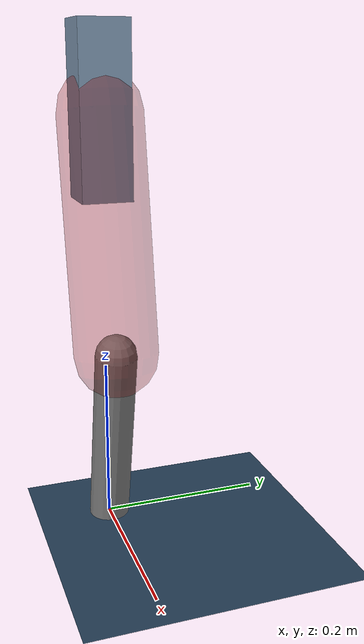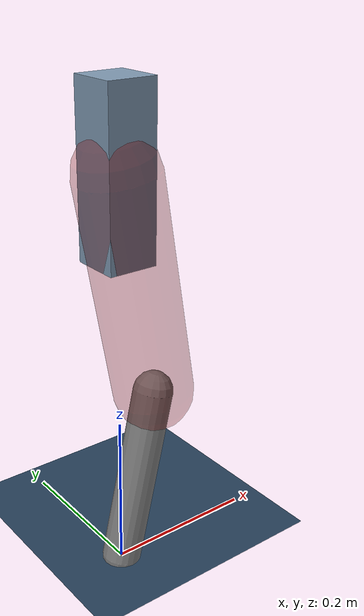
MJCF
<mujoco model="Hopper2D">
	<compiler inertiafromgeom="true" angle="radian" />
	<option timestep="0.001" integrator="implicit" cone="elliptic" solver="Newton" tolerance="1e-10" />

	<default>
		<geom contype="1" conaffinity="1" condim="3" friction="2 0.005 0.0001" solref="0.005 1" />
		<joint limited="true" damping="0.1" />
	</default>

	<asset>
		<texture name="skybox" type="skybox" builtin="gradient" rgb1=".4 .6 .8" rgb2="0 0 0" width="800" height="800" />
		<texture name="grid" type="2d" builtin="checker" rgb1=".1 .2 .3" rgb2=".2 .3 .4" width="300" height="300" mark="edge" markrgb=".2 .3 .4" />
		<material name="ground" texture="grid" texrepeat="1 1" texuniform="true" reflectance="0.1" />
		<material name="leg" rgba="0.5 0.6 0.7 1" />
	</asset>

	<worldbody>

		<geom name="floor" type="plane" size="5 5 0.25" material="ground" />

		<light directional="false" diffuse="0.8 0.8 0.8" specular="0.3 0.3 0.3" pos="0 0 2" dir="0 0 -1" />
		<light mode="targetbodycom" target="base" directional="false" diffuse="0.8 0.8 0.8" specular="0.3 0.3 0.3" pos="0 0 2" dir="0 0 -1" />

		<camera name="fixed" pos="0 -2 1" xyaxes="1 0 0 0 0 1" />
		<camera name="tracking" mode="trackcom" pos="0 -3 1" />

		<body name="root" pos="0 0 0.5069749189523899">
			<joint name="slide_x" type="slide" axis="1 0 0" range="-100 100" />
			<joint name="slide_z" type="slide" axis="0 0 1" range="0 10" />

			<body name="base" pos="0 0 0">
				<geom name="torso" type="box" size="0.03 0.03 0.1" mass="2.291" material="leg" />

				<body name="link1" pos="0 0 0" euler="0 1.389975815934819 0">
					<joint type="hinge" axis="0 -1 0" pos="0 0 0" name="hinge1" limited="true" range="-3.14 3.14" stiffness="0" damping="0.1" />
					<geom name="thigh" type="capsule" fromto="0 0 0 0.2802964052772253 0 0" size="0.05" rgba="0.5 0 0 0.3" mass="0.9359002942485083" />

					<body name="link2" pos="0.2802964052772253 0 0" euler="0 0.3954436158639892 0">
						<joint type="hinge" axis="0 -1 0" pos="0 0 0" name="hinge2" limited="true" range="-3.14 3.14" stiffness="0" damping="0.1" />
						<geom name="shank" type="capsule" fromto="0 0 0 0.23667851367516457 0 0" size="0.025" mass="0.4315428109401317" />

					</body>
				</body>
			</body>
		</body>
	</worldbody>

	<actuator>
		<motor name="torque1" joint="hinge1" ctrlrange="-76.95583267638449 76.95583267638449" ctrllimited="true" gear="1" />
		<motor name="torque2" joint="hinge2" ctrlrange="-48.962492445795064 48.962492445795064" ctrllimited="true" gear="1" />
	</actuator>
</mujoco>
